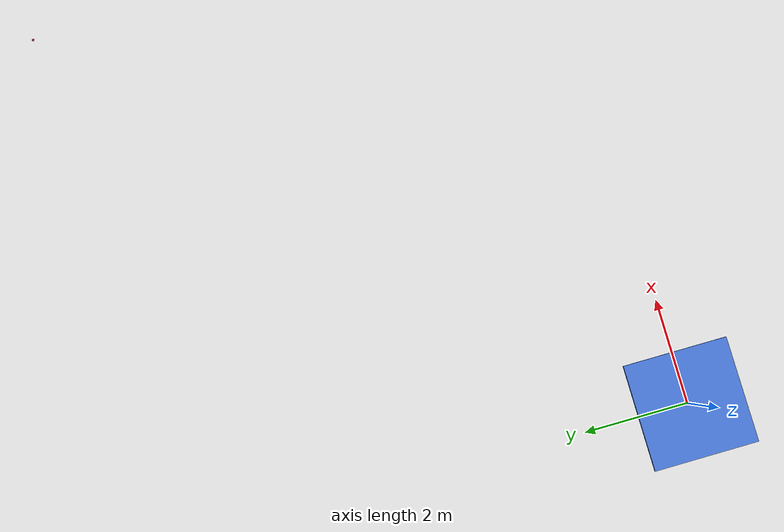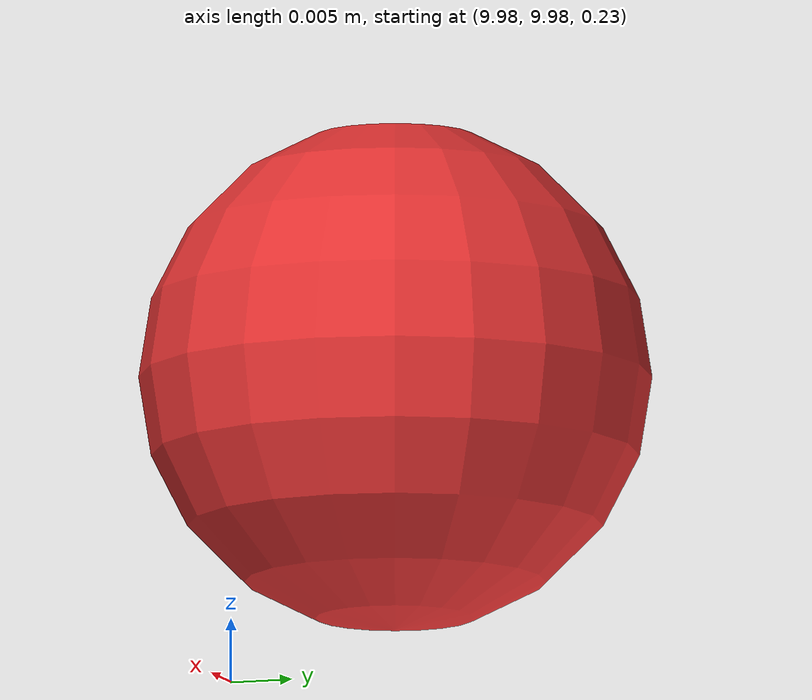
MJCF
<mujoco model="only_plate">

    <option timestep="0.002" gravity="0 0 -9.81"/>

    <worldbody>

        <!-- BASE -->
        <body name="base" pos="0 0 0">

            <!-- ROLL AXIS -->
            <body name="roll_link" pos="0 0 0.2">

                <inertial mass="0.2" pos="0 0 0"
                          diaginertia="0.01 0.01 0.01"/>

                <joint name="roll"
                       type="hinge"
                       axis="0 -1 0"
                       damping="0.05"/>

                <!-- PITCH AXIS -->
                <body name="pitch_link">

                    <inertial mass="0.2" pos="0 0 0"
                              diaginertia="0.01 0.01 0.01"/>

                    <joint name="pitch"
                           type="hinge"
                           axis="1 0 0"
                           damping="0.05"/>

                    <!-- PLATE (MOVING SURFACE) -->
                    <body name="plate_body">

                        <geom name="plate"
                              type="box"
                              size="1 1 0.025"
                              mass="2.0"
                              rgba="0.3 0.5 0.9 1"
                              friction="1.0 0.01 0.001"/>

                    </body>

                </body>

            </body>

        </body>

        <!-- BALL (WORLD FRAME) -->
        <body name="ball" pos="10 10 0.25">

            <freejoint name="ball_joint"/>

            <geom name="ball_geom"
                  type="sphere"
                  size="0.02"
                  mass="0.05"
                  rgba="0.9 0.2 0.2 1"

                  friction="1.2 0.01 0.0005"

                  solref="0.02 1"
                  solimp="0.9 0.95 0.001"/>

        </body>

    </worldbody>
    <!-- ACTUATION -->
    <actuator>

        <motor name="roll_motor"
               joint="roll"
               gear="8"/>

        <motor name="pitch_motor"
               joint="pitch"
               gear="8"/>

    </actuator>

</mujoco>
